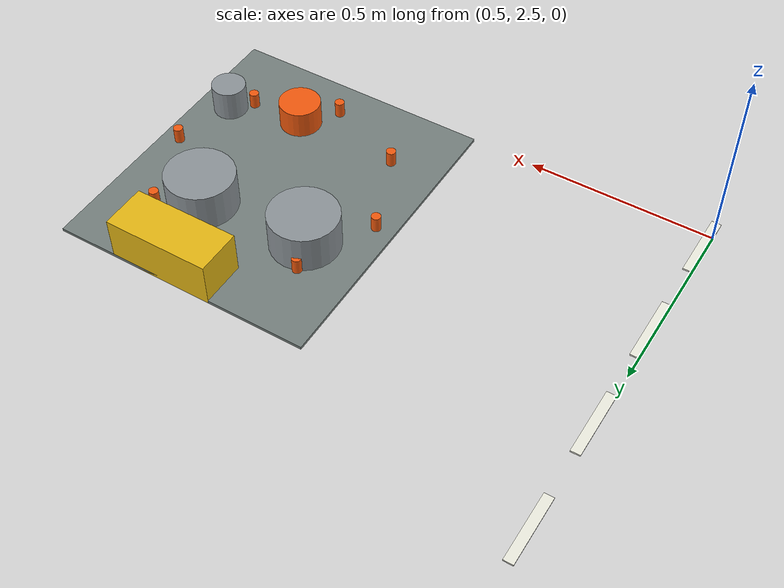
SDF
<sdf version="1.7">
 <world name="nexus_sandbox_imx219">
  <model name="LM-RING-W-07">
   <static>true</static>
   <pose>0.5 2.59 0.05450000000000001 0 0 0</pose>
   <link name="link">
    <collision name="collision"><geometry><box><size>0.025 0.18 0.004</size></box></geometry></collision>
    <visual name="visual">
     <geometry><box><size>0.025 0.18 0.004</size></box></geometry>
     <material><ambient>0.93 0.93 0.88 1</ambient><diffuse>0.93 0.93 0.88 1</diffuse></material>
    </visual>
   </link>
  </model>
  <model name="LM-RING-W-08">
   <static>true</static>
   <pose>0.5 2.89 0.05450000000000001 0 0 0</pose>
   <link name="link">
    <collision name="collision"><geometry><box><size>0.025 0.18 0.004</size></box></geometry></collision>
    <visual name="visual">
     <geometry><box><size>0.025 0.18 0.004</size></box></geometry>
     <material><ambient>0.93 0.93 0.88 1</ambient><diffuse>0.93 0.93 0.88 1</diffuse></material>
    </visual>
   </link>
  </model>
  <model name="LM-RING-W-09">
   <static>true</static>
   <pose>0.5 3.19 0.05450000000000001 0 0 0</pose>
   <link name="link">
    <collision name="collision"><geometry><box><size>0.025 0.18 0.004</size></box></geometry></collision>
    <visual name="visual">
     <geometry><box><size>0.025 0.18 0.004</size></box></geometry>
     <material><ambient>0.93 0.93 0.88 1</ambient><diffuse>0.93 0.93 0.88 1</diffuse></material>
    </visual>
   </link>
  </model>
  <model name="LM-RING-W-10">
   <static>true</static>
   <pose>0.5 3.4899999999999998 0.05450000000000001 0 0 0</pose>
   <link name="link">
    <collision name="collision"><geometry><box><size>0.025 0.18 0.004</size></box></geometry></collision>
    <visual name="visual">
     <geometry><box><size>0.025 0.18 0.004</size></box></geometry>
     <material><ambient>0.93 0.93 0.88 1</ambient><diffuse>0.93 0.93 0.88 1</diffuse></material>
    </visual>
   </link>
  </model>
  <model name="IND-NW-PAD">
   <static>true</static>
   <pose>1.5 2.95 0.054000000000000006 0 0 0</pose>
   <link name="link">
    <collision name="collision">
     <geometry><box><size>0.7000000000000001 0.8 0.008</size></box></geometry>
    </collision>
    <visual name="visual">
     <geometry><box><size>0.7000000000000001 0.8 0.008</size></box></geometry>
     <material><ambient>0.46 0.5 0.49 1</ambient><diffuse>0.46 0.5 0.49 1</diffuse></material>
    </visual>
   </link>
  </model>
  <model name="NW-T01">
   <static>true</static>
   <pose>1.32 3.08 0.10500000000000001 0 0 0</pose>
   <link name="link">
    <collision name="collision">
     <geometry><cylinder><radius>0.09</radius><length>0.11</length></cylinder></geometry>
    </collision>
    <visual name="visual">
     <geometry><cylinder><radius>0.09</radius><length>0.11</length></cylinder></geometry>
     <material><ambient>0.55 0.58 0.6 1</ambient><diffuse>0.55 0.58 0.6 1</diffuse></material>
    </visual>
   </link>
  </model>
  <model name="NW-T02">
   <static>true</static>
   <pose>1.61 3.1 0.10500000000000001 0 0 0</pose>
   <link name="link">
    <collision name="collision">
     <geometry><cylinder><radius>0.09</radius><length>0.11</length></cylinder></geometry>
    </collision>
    <visual name="visual">
     <geometry><cylinder><radius>0.09</radius><length>0.11</length></cylinder></geometry>
     <material><ambient>0.55 0.58 0.6 1</ambient><diffuse>0.55 0.58 0.6 1</diffuse></material>
    </visual>
   </link>
  </model>
  <model name="NW-T03">
   <static>true</static>
   <pose>1.76 2.7800000000000002 0.095 0 0 0</pose>
   <link name="link">
    <collision name="collision">
     <geometry><cylinder><radius>0.045</radius><length>0.09</length></cylinder></geometry>
    </collision>
    <visual name="visual">
     <geometry><cylinder><radius>0.045</radius><length>0.09</length></cylinder></geometry>
     <material><ambient>0.55 0.58 0.6 1</ambient><diffuse>0.55 0.58 0.6 1</diffuse></material>
    </visual>
   </link>
  </model>
  <model name="NW-T04">
   <static>true</static>
   <pose>1.57 2.73 0.09 0 0 0</pose>
   <link name="link">
    <collision name="collision">
     <geometry><cylinder><radius>0.055</radius><length>0.08</length></cylinder></geometry>
    </collision>
    <visual name="visual">
     <geometry><cylinder><radius>0.055</radius><length>0.08</length></cylinder></geometry>
     <material><ambient>0.95 0.35 0.05 1</ambient><diffuse>0.95 0.35 0.05 1</diffuse></material>
    </visual>
   </link>
  </model>
  <model name="NW-B01">
   <static>true</static>
   <pose>1.55 3.29 0.11 0 0 0</pose>
   <link name="link">
    <collision name="collision"><geometry><box><size>0.28 0.12 0.12</size></box></geometry></collision>
    <visual name="visual">
     <geometry><box><size>0.28 0.12 0.12</size></box></geometry>
     <material><ambient>0.9 0.72 0.08 1</ambient><diffuse>0.9 0.72 0.08 1</diffuse></material>
    </visual>
   </link>
  </model>
  <model name="NW-C-01">
   <static>true</static>
   <pose>1.8 2.95 0.07500000000000001 0 0 0</pose>
   <link name="link">
    <collision name="collision">
     <geometry><cylinder><radius>0.0125</radius><length>0.05</length></cylinder></geometry>
    </collision>
    <visual name="visual">
     <geometry><cylinder><radius>0.0125</radius><length>0.05</length></cylinder></geometry>
     <material><ambient>0.95 0.35 0.05 1</ambient><diffuse>0.95 0.35 0.05 1</diffuse></material>
    </visual>
   </link>
  </model>
  <model name="NW-C-02">
   <static>true</static>
   <pose>1.7121320343559643 3.1621320343559645 0.07500000000000001 0 0 0</pose>
   <link name="link">
    <collision name="collision">
     <geometry><cylinder><radius>0.0125</radius><length>0.05</length></cylinder></geometry>
    </collision>
    <visual name="visual">
     <geometry><cylinder><radius>0.0125</radius><length>0.05</length></cylinder></geometry>
     <material><ambient>0.95 0.35 0.05 1</ambient><diffuse>0.95 0.35 0.05 1</diffuse></material>
    </visual>
   </link>
  </model>
  <model name="NW-C-03">
   <static>true</static>
   <pose>1.5 3.25 0.07500000000000001 0 0 0</pose>
   <link name="link">
    <collision name="collision">
     <geometry><cylinder><radius>0.0125</radius><length>0.05</length></cylinder></geometry>
    </collision>
    <visual name="visual">
     <geometry><cylinder><radius>0.0125</radius><length>0.05</length></cylinder></geometry>
     <material><ambient>0.95 0.35 0.05 1</ambient><diffuse>0.95 0.35 0.05 1</diffuse></material>
    </visual>
   </link>
  </model>
  <model name="NW-C-04">
   <static>true</static>
   <pose>1.2878679656440357 3.1621320343559645 0.07500000000000001 0 0 0</pose>
   <link name="link">
    <collision name="collision">
     <geometry><cylinder><radius>0.0125</radius><length>0.05</length></cylinder></geometry>
    </collision>
    <visual name="visual">
     <geometry><cylinder><radius>0.0125</radius><length>0.05</length></cylinder></geometry>
     <material><ambient>0.95 0.35 0.05 1</ambient><diffuse>0.95 0.35 0.05 1</diffuse></material>
    </visual>
   </link>
  </model>
  <model name="NW-C-05">
   <static>true</static>
   <pose>1.2 2.95 0.07500000000000001 0 0 0</pose>
   <link name="link">
    <collision name="collision">
     <geometry><cylinder><radius>0.0125</radius><length>0.05</length></cylinder></geometry>
    </collision>
    <visual name="visual">
     <geometry><cylinder><radius>0.0125</radius><length>0.05</length></cylinder></geometry>
     <material><ambient>0.95 0.35 0.05 1</ambient><diffuse>0.95 0.35 0.05 1</diffuse></material>
    </visual>
   </link>
  </model>
  <model name="NW-C-06">
   <static>true</static>
   <pose>1.2878679656440357 2.737867965644036 0.07500000000000001 0 0 0</pose>
   <link name="link">
    <collision name="collision">
     <geometry><cylinder><radius>0.0125</radius><length>0.05</length></cylinder></geometry>
    </collision>
    <visual name="visual">
     <geometry><cylinder><radius>0.0125</radius><length>0.05</length></cylinder></geometry>
     <material><ambient>0.95 0.35 0.05 1</ambient><diffuse>0.95 0.35 0.05 1</diffuse></material>
    </visual>
   </link>
  </model>
  <model name="NW-C-07">
   <static>true</static>
   <pose>1.5 2.6500000000000004 0.07500000000000001 0 0 0</pose>
   <link name="link">
    <collision name="collision">
     <geometry><cylinder><radius>0.0125</radius><length>0.05</length></cylinder></geometry>
    </collision>
    <visual name="visual">
     <geometry><cylinder><radius>0.0125</radius><length>0.05</length></cylinder></geometry>
     <material><ambient>0.95 0.35 0.05 1</ambient><diffuse>0.95 0.35 0.05 1</diffuse></material>
    </visual>
   </link>
  </model>
  <model name="NW-C-08">
   <static>true</static>
   <pose>1.7121320343559643 2.737867965644036 0.07500000000000001 0 0 0</pose>
   <link name="link">
    <collision name="collision">
     <geometry><cylinder><radius>0.0125</radius><length>0.05</length></cylinder></geometry>
    </collision>
    <visual name="visual">
     <geometry><cylinder><radius>0.0125</radius><length>0.05</length></cylinder></geometry>
     <material><ambient>0.95 0.35 0.05 1</ambient><diffuse>0.95 0.35 0.05 1</diffuse></material>
    </visual>
   </link>
  </model>
 </world>
</sdf>
